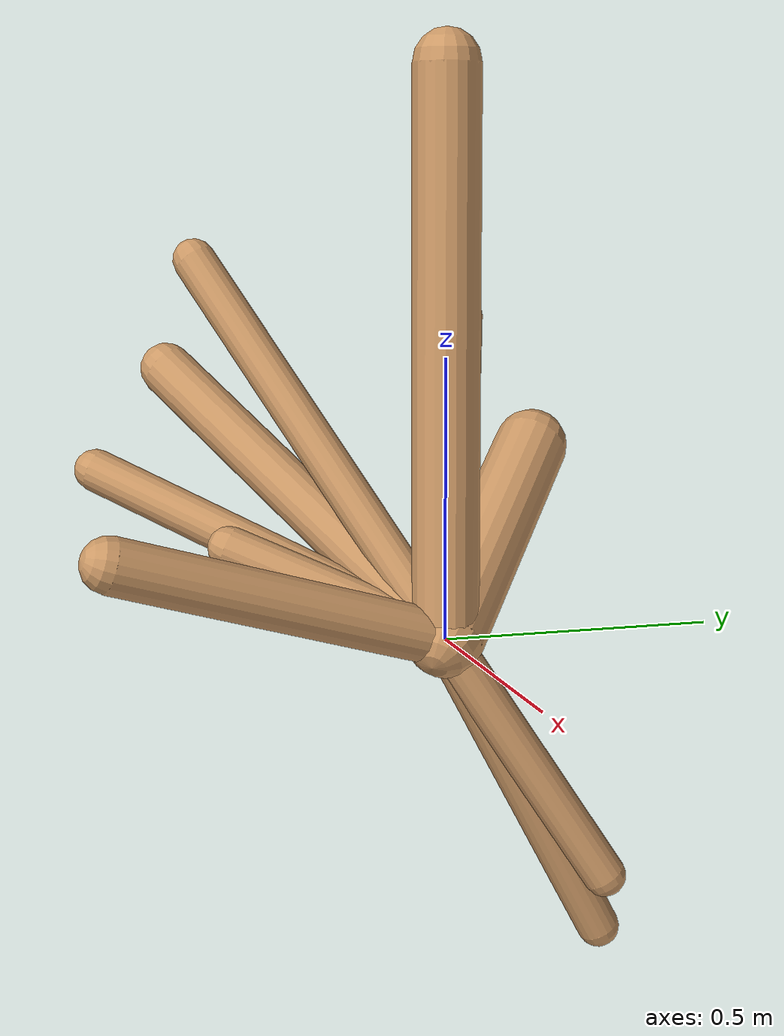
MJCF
<!--
                    joint_number: 9
                    -->
                    <mujoco model="randomrobot">
                        <compiler angle="degree" coordinate="global" inertiafromgeom="true"/>
                        <default>
                        <joint armature="0.01" damping=".1" limited="true"/>
                        <geom conaffinity="0" condim="3" contype="1" density="1000" friction="0.8 .1 .1" rgba="0.8 0.6 .4 1"/>
                        </default>
                        <option integrator="RK4" timestep="0.002"/>
                        <worldbody>
                    <body name='torso' pos='0.00 0.00 0.72'><geom fromto='0 0 0 0.00 0.00 1.00' name='torso_geom' size='0.06' type='capsule'/><inertial mass='0.3'/><body name='L0_D1' pos='0.00 0.00 0.77'><joint axis='0 0 1' name='L0_D1_joint' pos='0 0 0' range='30.44 136.90' type='hinge'/><geom fromto='0 0 0 -0.31 0.27 0.30' name='L0_D1_geom' size='0.07' type='capsule'/><inertial mass='0.3'/></body><body name='L1_D1' pos='0.00 0.00 0.15'><joint axis='1 0 0' name='L1_D1_joint' pos='0 0 0' range='130.94 157.97' type='hinge'/><geom fromto='0 0 0 -0.49 -0.41 0.45' name='L1_D1_geom' size='0.05' type='capsule'/><inertial mass='0.3'/><body name='L2_D0' pos='-0.35 -0.29 0.32'><joint axis='0 1 0' name='L2_D0_joint' pos='0 0 0' range='92.36 111.20' type='hinge'/><geom fromto='0 0 0 -0.07 0.33 -0.60' name='L2_D0_geom' size='0.04' type='capsule'/><inertial mass='0.3'/></body><body name='L3_D0' pos='-0.19 -0.16 0.18'><joint axis='0 1 0' name='L3_D0_joint' pos='0 0 0' range='67.05 114.83' type='hinge'/><geom fromto='0 0 0 -0.23 0.09 0.56' name='L3_D0_geom' size='0.05' type='capsule'/><inertial mass='0.3'/></body></body><body name='L4_D1' pos='0.00 0.00 0.35'><joint axis='0 1 0' name='L4_D1_joint' pos='0 0 0' range='47.20 54.16' type='hinge'/><geom fromto='0 0 0 -0.39 -0.37 0.66' name='L4_D1_geom' size='0.04' type='capsule'/><inertial mass='0.3'/><body name='L5_D0' pos='-0.02 -0.01 0.03'><joint axis='0 1 0' name='L5_D0_joint' pos='0 0 0' range='87.58 172.23' type='hinge'/><geom fromto='0 0 0 0.07 -0.60 0.18' name='L5_D0_geom' size='0.05' type='capsule'/><inertial mass='0.3'/></body><body name='L6_D0' pos='-0.02 -0.02 0.04'><joint axis='0 1 0' name='L6_D0_joint' pos='0 0 0' range='37.93 124.96' type='hinge'/><geom fromto='0 0 0 0.03 0.30 -0.46' name='L6_D0_geom' size='0.04' type='capsule'/><inertial mass='0.3'/></body></body><body name='L7_D1' pos='0.00 0.00 0.56'><joint axis='1 0 0' name='L7_D1_joint' pos='0 0 0' range='37.73 103.82' type='hinge'/><geom fromto='0 0 0 -0.19 -0.35 0.15' name='L7_D1_geom' size='0.04' type='capsule'/><inertial mass='0.3'/><body name='L8_D0' pos='-0.11 -0.21 0.09'><joint axis='0 1 0' name='L8_D0_joint' pos='0 0 0' range='31.47 151.99' type='hinge'/><geom fromto='0 0 0 -0.41 -0.56 0.27' name='L8_D0_geom' size='0.04' type='capsule'/><inertial mass='0.3'/></body></body></body>
                        </worldbody>
                    </mujoco>
